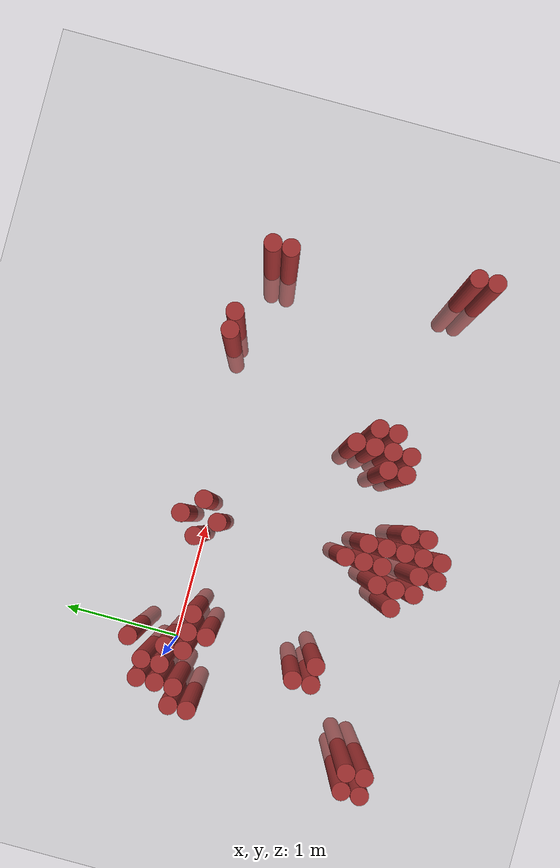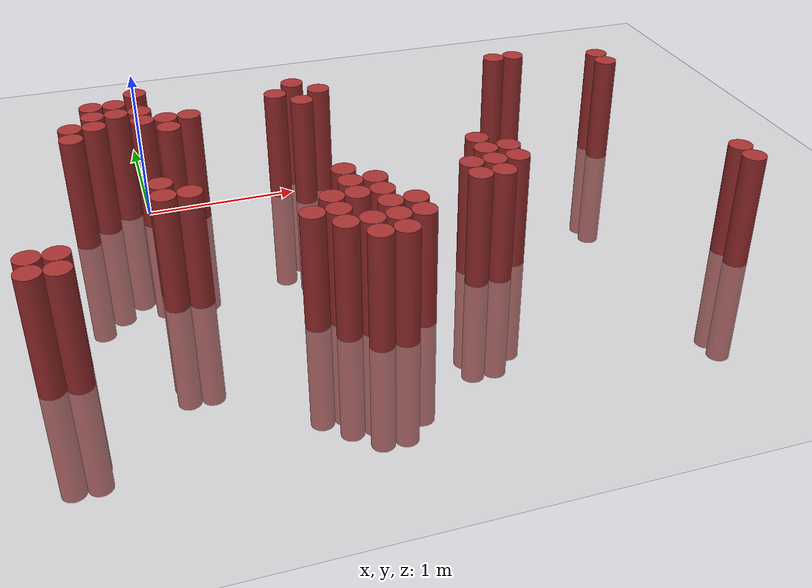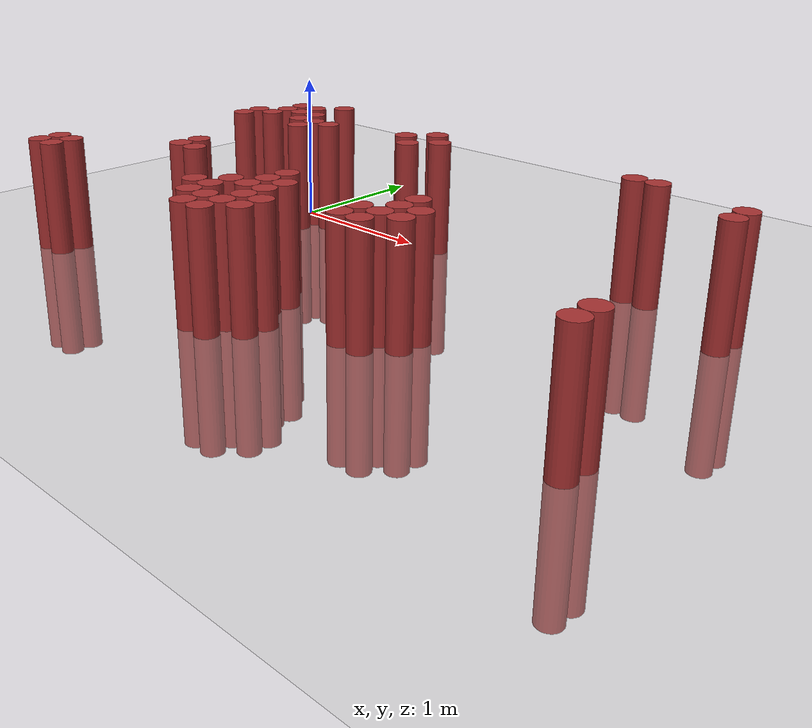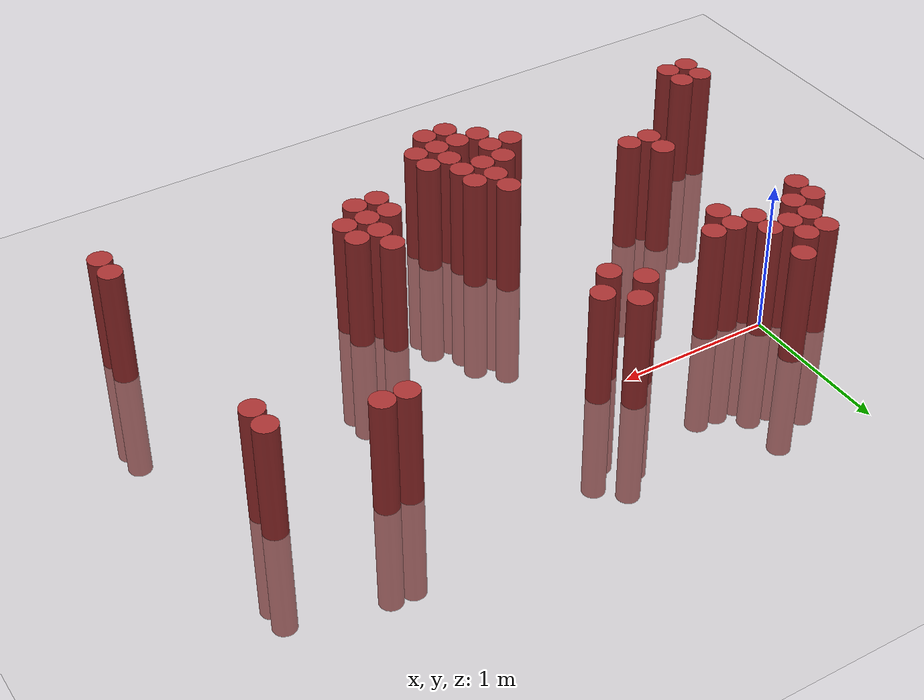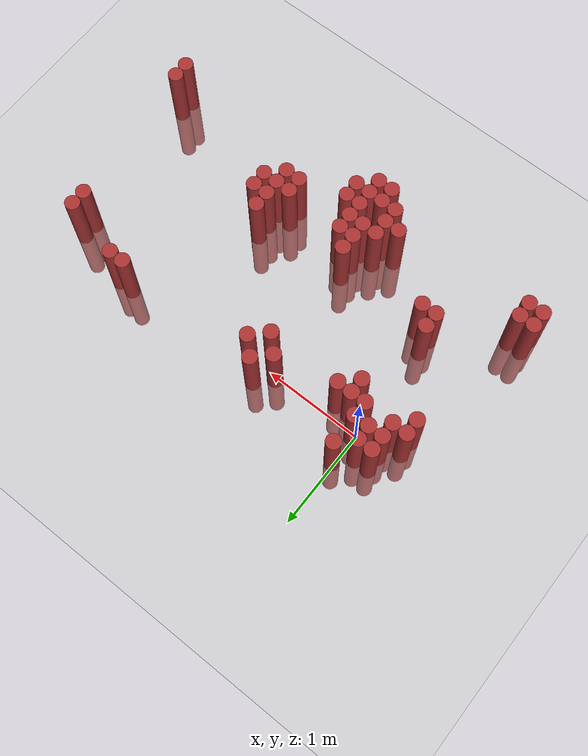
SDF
<sdf version="1.6">
 <world name="default">
  <model name="ground_plane">
   <static>1</static>
   <link name="link">
    <collision name="collision">
     <geometry><plane><normal>0 0 1</normal><size>100 100</size></plane></geometry>
     <surface><friction><ode><mu>100</mu><mu2>50</mu2></ode></friction></surface>
    </collision>
    <visual name="visual">
     <cast_shadows>0</cast_shadows>
     <geometry><plane><normal>0 0 1</normal><size>100 100</size></plane></geometry>
     <material>
      <script><uri>file://media/materials/scripts/gazebo.material</uri><name>Gazebo/Grey</name></script>
     </material>
    </visual>
   </link>
  </model>
  <model name="unit_cylinder_357">
   <static>1</static>
   <pose>-0.725000 -1.775000 0.000000 0.000000 0.000000 0.000000</pose>
   <link name="link">
    <inertial>
     <mass>1</mass>
     <inertia><ixx>0.145833</ixx><ixy>0</ixy><ixz>0</ixz><iyy>0.145833</iyy><iyz>0</iyz><izz>0.125</izz></inertia>
    </inertial>
    <collision name="collision">
     <geometry><cylinder><radius>0.075000</radius><length>1.5</length></cylinder></geometry>
    </collision>
    <visual name="visual">
     <geometry><cylinder><radius>0.075000</radius><length>1.5</length></cylinder></geometry>
     <material>
      <ambient>0.648000 0.192000 0.192000 1</ambient>
      <diffuse>0.648000 0.192000 0.192000 1</diffuse>
     </material>
     <material>
      <script><name>Gazebo/Grey</name><uri>file://media/materials/scripts/gazebo.material</uri></script>
     </material>
    </visual>
   </link>
  </model>
  <model name="unit_cylinder_358">
   <static>1</static>
   <pose>-0.725000 -1.625000 0.000000 0.000000 0.000000 0.000000</pose>
   <link name="link">
    <inertial>
     <mass>1</mass>
     <inertia><ixx>0.145833</ixx><ixy>0</ixy><ixz>0</ixz><iyy>0.145833</iyy><iyz>0</iyz><izz>0.125</izz></inertia>
    </inertial>
    <collision name="collision">
     <geometry><cylinder><radius>0.075000</radius><length>1.5</length></cylinder></geometry>
    </collision>
    <visual name="visual">
     <geometry><cylinder><radius>0.075000</radius><length>1.5</length></cylinder></geometry>
     <material>
      <ambient>0.648000 0.192000 0.192000 1</ambient>
      <diffuse>0.648000 0.192000 0.192000 1</diffuse>
     </material>
     <material>
      <script><name>Gazebo/Grey</name><uri>file://media/materials/scripts/gazebo.material</uri></script>
     </material>
    </visual>
   </link>
  </model>
  <model name="unit_cylinder_365">
   <static>1</static>
   <pose>-0.575000 -1.775000 0.000000 0.000000 0.000000 0.000000</pose>
   <link name="link">
    <inertial>
     <mass>1</mass>
     <inertia><ixx>0.145833</ixx><ixy>0</ixy><ixz>0</ixz><iyy>0.145833</iyy><iyz>0</iyz><izz>0.125</izz></inertia>
    </inertial>
    <collision name="collision">
     <geometry><cylinder><radius>0.075000</radius><length>1.5</length></cylinder></geometry>
    </collision>
    <visual name="visual">
     <geometry><cylinder><radius>0.075000</radius><length>1.5</length></cylinder></geometry>
     <material>
      <ambient>0.648000 0.192000 0.192000 1</ambient>
      <diffuse>0.648000 0.192000 0.192000 1</diffuse>
     </material>
     <material>
      <script><name>Gazebo/Grey</name><uri>file://media/materials/scripts/gazebo.material</uri></script>
     </material>
    </visual>
   </link>
  </model>
  <model name="unit_cylinder_366">
   <static>1</static>
   <pose>-0.575000 -1.625000 0.000000 0.000000 0.000000 0.000000</pose>
   <link name="link">
    <inertial>
     <mass>1</mass>
     <inertia><ixx>0.145833</ixx><ixy>0</ixy><ixz>0</ixz><iyy>0.145833</iyy><iyz>0</iyz><izz>0.125</izz></inertia>
    </inertial>
    <collision name="collision">
     <geometry><cylinder><radius>0.075000</radius><length>1.5</length></cylinder></geometry>
    </collision>
    <visual name="visual">
     <geometry><cylinder><radius>0.075000</radius><length>1.5</length></cylinder></geometry>
     <material>
      <ambient>0.648000 0.192000 0.192000 1</ambient>
      <diffuse>0.648000 0.192000 0.192000 1</diffuse>
     </material>
     <material>
      <script><name>Gazebo/Grey</name><uri>file://media/materials/scripts/gazebo.material</uri></script>
     </material>
    </visual>
   </link>
  </model>
  <model name="unit_cylinder_371">
   <static>1</static>
   <pose>-0.425000 -0.275000 0.000000 0.000000 0.000000 0.000000</pose>
   <link name="link">
    <inertial>
     <mass>1</mass>
     <inertia><ixx>0.145833</ixx><ixy>0</ixy><ixz>0</ixz><iyy>0.145833</iyy><iyz>0</iyz><izz>0.125</izz></inertia>
    </inertial>
    <collision name="collision">
     <geometry><cylinder><radius>0.075000</radius><length>1.5</length></cylinder></geometry>
    </collision>
    <visual name="visual">
     <geometry><cylinder><radius>0.075000</radius><length>1.5</length></cylinder></geometry>
     <material>
      <ambient>0.648000 0.192000 0.192000 1</ambient>
      <diffuse>0.648000 0.192000 0.192000 1</diffuse>
     </material>
     <material>
      <script><name>Gazebo/Grey</name><uri>file://media/materials/scripts/gazebo.material</uri></script>
     </material>
    </visual>
   </link>
  </model>
  <model name="unit_cylinder_372">
   <static>1</static>
   <pose>-0.425000 -0.125000 0.000000 0.000000 0.000000 0.000000</pose>
   <link name="link">
    <inertial>
     <mass>1</mass>
     <inertia><ixx>0.145833</ixx><ixy>0</ixy><ixz>0</ixz><iyy>0.145833</iyy><iyz>0</iyz><izz>0.125</izz></inertia>
    </inertial>
    <collision name="collision">
     <geometry><cylinder><radius>0.075000</radius><length>1.5</length></cylinder></geometry>
    </collision>
    <visual name="visual">
     <geometry><cylinder><radius>0.075000</radius><length>1.5</length></cylinder></geometry>
     <material>
      <ambient>0.648000 0.192000 0.192000 1</ambient>
      <diffuse>0.648000 0.192000 0.192000 1</diffuse>
     </material>
     <material>
      <script><name>Gazebo/Grey</name><uri>file://media/materials/scripts/gazebo.material</uri></script>
     </material>
    </visual>
   </link>
  </model>
  <model name="unit_cylinder_374">
   <static>1</static>
   <pose>-0.275000 -0.125000 0.000000 0.000000 0.000000 0.000000</pose>
   <link name="link">
    <inertial>
     <mass>1</mass>
     <inertia><ixx>0.145833</ixx><ixy>0</ixy><ixz>0</ixz><iyy>0.145833</iyy><iyz>0</iyz><izz>0.125</izz></inertia>
    </inertial>
    <collision name="collision">
     <geometry><cylinder><radius>0.075000</radius><length>1.5</length></cylinder></geometry>
    </collision>
    <visual name="visual">
     <geometry><cylinder><radius>0.075000</radius><length>1.5</length></cylinder></geometry>
     <material>
      <ambient>0.648000 0.192000 0.192000 1</ambient>
      <diffuse>0.648000 0.192000 0.192000 1</diffuse>
     </material>
     <material>
      <script><name>Gazebo/Grey</name><uri>file://media/materials/scripts/gazebo.material</uri></script>
     </material>
    </visual>
   </link>
  </model>
  <model name="unit_cylinder_375">
   <static>1</static>
   <pose>-0.275000 0.025000 0.000000 0.000000 0.000000 0.000000</pose>
   <link name="link">
    <inertial>
     <mass>1</mass>
     <inertia><ixx>0.145833</ixx><ixy>0</ixy><ixz>0</ixz><iyy>0.145833</iyy><iyz>0</iyz><izz>0.125</izz></inertia>
    </inertial>
    <collision name="collision">
     <geometry><cylinder><radius>0.075000</radius><length>1.5</length></cylinder></geometry>
    </collision>
    <visual name="visual">
     <geometry><cylinder><radius>0.075000</radius><length>1.5</length></cylinder></geometry>
     <material>
      <ambient>0.648000 0.192000 0.192000 1</ambient>
      <diffuse>0.648000 0.192000 0.192000 1</diffuse>
     </material>
     <material>
      <script><name>Gazebo/Grey</name><uri>file://media/materials/scripts/gazebo.material</uri></script>
     </material>
    </visual>
   </link>
  </model>
  <model name="unit_cylinder_376">
   <static>1</static>
   <pose>-0.275000 0.175000 0.000000 0.000000 0.000000 0.000000</pose>
   <link name="link">
    <inertial>
     <mass>1</mass>
     <inertia><ixx>0.145833</ixx><ixy>0</ixy><ixz>0</ixz><iyy>0.145833</iyy><iyz>0</iyz><izz>0.125</izz></inertia>
    </inertial>
    <collision name="collision">
     <geometry><cylinder><radius>0.075000</radius><length>1.5</length></cylinder></geometry>
    </collision>
    <visual name="visual">
     <geometry><cylinder><radius>0.075000</radius><length>1.5</length></cylinder></geometry>
     <material>
      <ambient>0.648000 0.192000 0.192000 1</ambient>
      <diffuse>0.648000 0.192000 0.192000 1</diffuse>
     </material>
     <material>
      <script><name>Gazebo/Grey</name><uri>file://media/materials/scripts/gazebo.material</uri></script>
     </material>
    </visual>
   </link>
  </model>
  <model name="unit_cylinder_379">
   <static>1</static>
   <pose>-0.125000 0.025000 0.000000 0.000000 0.000000 0.000000</pose>
   <link name="link">
    <inertial>
     <mass>1</mass>
     <inertia><ixx>0.145833</ixx><ixy>0</ixy><ixz>0</ixz><iyy>0.145833</iyy><iyz>0</iyz><izz>0.125</izz></inertia>
    </inertial>
    <collision name="collision">
     <geometry><cylinder><radius>0.075000</radius><length>1.5</length></cylinder></geometry>
    </collision>
    <visual name="visual">
     <geometry><cylinder><radius>0.075000</radius><length>1.5</length></cylinder></geometry>
     <material>
      <ambient>0.648000 0.192000 0.192000 1</ambient>
      <diffuse>0.648000 0.192000 0.192000 1</diffuse>
     </material>
     <material>
      <script><name>Gazebo/Grey</name><uri>file://media/materials/scripts/gazebo.material</uri></script>
     </material>
    </visual>
   </link>
  </model>
  <model name="unit_cylinder_380">
   <static>1</static>
   <pose>-0.125000 0.175000 0.000000 0.000000 0.000000 0.000000</pose>
   <link name="link">
    <inertial>
     <mass>1</mass>
     <inertia><ixx>0.145833</ixx><ixy>0</ixy><ixz>0</ixz><iyy>0.145833</iyy><iyz>0</iyz><izz>0.125</izz></inertia>
    </inertial>
    <collision name="collision">
     <geometry><cylinder><radius>0.075000</radius><length>1.5</length></cylinder></geometry>
    </collision>
    <visual name="visual">
     <geometry><cylinder><radius>0.075000</radius><length>1.5</length></cylinder></geometry>
     <material>
      <ambient>0.648000 0.192000 0.192000 1</ambient>
      <diffuse>0.648000 0.192000 0.192000 1</diffuse>
     </material>
     <material>
      <script><name>Gazebo/Grey</name><uri>file://media/materials/scripts/gazebo.material</uri></script>
     </material>
    </visual>
   </link>
  </model>
  <model name="unit_cylinder_382">
   <static>1</static>
   <pose>0.025000 -1.175000 0.000000 0.000000 0.000000 0.000000</pose>
   <link name="link">
    <inertial>
     <mass>1</mass>
     <inertia><ixx>0.145833</ixx><ixy>0</ixy><ixz>0</ixz><iyy>0.145833</iyy><iyz>0</iyz><izz>0.125</izz></inertia>
    </inertial>
    <collision name="collision">
     <geometry><cylinder><radius>0.075000</radius><length>1.5</length></cylinder></geometry>
    </collision>
    <visual name="visual">
     <geometry><cylinder><radius>0.075000</radius><length>1.5</length></cylinder></geometry>
     <material>
      <ambient>0.648000 0.192000 0.192000 1</ambient>
      <diffuse>0.648000 0.192000 0.192000 1</diffuse>
     </material>
     <material>
      <script><name>Gazebo/Grey</name><uri>file://media/materials/scripts/gazebo.material</uri></script>
     </material>
    </visual>
   </link>
  </model>
  <model name="unit_cylinder_383">
   <static>1</static>
   <pose>0.025000 -1.025000 0.000000 0.000000 0.000000 0.000000</pose>
   <link name="link">
    <inertial>
     <mass>1</mass>
     <inertia><ixx>0.145833</ixx><ixy>0</ixy><ixz>0</ixz><iyy>0.145833</iyy><iyz>0</iyz><izz>0.125</izz></inertia>
    </inertial>
    <collision name="collision">
     <geometry><cylinder><radius>0.075000</radius><length>1.5</length></cylinder></geometry>
    </collision>
    <visual name="visual">
     <geometry><cylinder><radius>0.075000</radius><length>1.5</length></cylinder></geometry>
     <material>
      <ambient>0.648000 0.192000 0.192000 1</ambient>
      <diffuse>0.648000 0.192000 0.192000 1</diffuse>
     </material>
     <material>
      <script><name>Gazebo/Grey</name><uri>file://media/materials/scripts/gazebo.material</uri></script>
     </material>
    </visual>
   </link>
  </model>
  <model name="unit_cylinder_384">
   <static>1</static>
   <pose>0.025000 -0.125000 0.000000 0.000000 0.000000 0.000000</pose>
   <link name="link">
    <inertial>
     <mass>1</mass>
     <inertia><ixx>0.145833</ixx><ixy>0</ixy><ixz>0</ixz><iyy>0.145833</iyy><iyz>0</iyz><izz>0.125</izz></inertia>
    </inertial>
    <collision name="collision">
     <geometry><cylinder><radius>0.075000</radius><length>1.5</length></cylinder></geometry>
    </collision>
    <visual name="visual">
     <geometry><cylinder><radius>0.075000</radius><length>1.5</length></cylinder></geometry>
     <material>
      <ambient>0.648000 0.192000 0.192000 1</ambient>
      <diffuse>0.648000 0.192000 0.192000 1</diffuse>
     </material>
     <material>
      <script><name>Gazebo/Grey</name><uri>file://media/materials/scripts/gazebo.material</uri></script>
     </material>
    </visual>
   </link>
  </model>
  <model name="unit_cylinder_385">
   <static>1</static>
   <pose>0.025000 0.025000 0.000000 0.000000 0.000000 0.000000</pose>
   <link name="link">
    <inertial>
     <mass>1</mass>
     <inertia><ixx>0.145833</ixx><ixy>0</ixy><ixz>0</ixz><iyy>0.145833</iyy><iyz>0</iyz><izz>0.125</izz></inertia>
    </inertial>
    <collision name="collision">
     <geometry><cylinder><radius>0.075000</radius><length>1.5</length></cylinder></geometry>
    </collision>
    <visual name="visual">
     <geometry><cylinder><radius>0.075000</radius><length>1.5</length></cylinder></geometry>
     <material>
      <ambient>0.648000 0.192000 0.192000 1</ambient>
      <diffuse>0.648000 0.192000 0.192000 1</diffuse>
     </material>
     <material>
      <script><name>Gazebo/Grey</name><uri>file://media/materials/scripts/gazebo.material</uri></script>
     </material>
    </visual>
   </link>
  </model>
  <model name="unit_cylinder_386">
   <static>1</static>
   <pose>0.025000 0.325000 0.000000 0.000000 0.000000 0.000000</pose>
   <link name="link">
    <inertial>
     <mass>1</mass>
     <inertia><ixx>0.145833</ixx><ixy>0</ixy><ixz>0</ixz><iyy>0.145833</iyy><iyz>0</iyz><izz>0.125</izz></inertia>
    </inertial>
    <collision name="collision">
     <geometry><cylinder><radius>0.075000</radius><length>1.5</length></cylinder></geometry>
    </collision>
    <visual name="visual">
     <geometry><cylinder><radius>0.075000</radius><length>1.5</length></cylinder></geometry>
     <material>
      <ambient>0.648000 0.192000 0.192000 1</ambient>
      <diffuse>0.648000 0.192000 0.192000 1</diffuse>
     </material>
     <material>
      <script><name>Gazebo/Grey</name><uri>file://media/materials/scripts/gazebo.material</uri></script>
     </material>
    </visual>
   </link>
  </model>
  <model name="unit_cylinder_387">
   <static>1</static>
   <pose>0.175000 -1.175000 0.000000 0.000000 0.000000 0.000000</pose>
   <link name="link">
    <inertial>
     <mass>1</mass>
     <inertia><ixx>0.145833</ixx><ixy>0</ixy><ixz>0</ixz><iyy>0.145833</iyy><iyz>0</iyz><izz>0.125</izz></inertia>
    </inertial>
    <collision name="collision">
     <geometry><cylinder><radius>0.075000</radius><length>1.5</length></cylinder></geometry>
    </collision>
    <visual name="visual">
     <geometry><cylinder><radius>0.075000</radius><length>1.5</length></cylinder></geometry>
     <material>
      <ambient>0.648000 0.192000 0.192000 1</ambient>
      <diffuse>0.648000 0.192000 0.192000 1</diffuse>
     </material>
     <material>
      <script><name>Gazebo/Grey</name><uri>file://media/materials/scripts/gazebo.material</uri></script>
     </material>
    </visual>
   </link>
  </model>
  <model name="unit_cylinder_388">
   <static>1</static>
   <pose>0.175000 -0.275000 0.000000 0.000000 0.000000 0.000000</pose>
   <link name="link">
    <inertial>
     <mass>1</mass>
     <inertia><ixx>0.145833</ixx><ixy>0</ixy><ixz>0</ixz><iyy>0.145833</iyy><iyz>0</iyz><izz>0.125</izz></inertia>
    </inertial>
    <collision name="collision">
     <geometry><cylinder><radius>0.075000</radius><length>1.5</length></cylinder></geometry>
    </collision>
    <visual name="visual">
     <geometry><cylinder><radius>0.075000</radius><length>1.5</length></cylinder></geometry>
     <material>
      <ambient>0.648000 0.192000 0.192000 1</ambient>
      <diffuse>0.648000 0.192000 0.192000 1</diffuse>
     </material>
     <material>
      <script><name>Gazebo/Grey</name><uri>file://media/materials/scripts/gazebo.material</uri></script>
     </material>
    </visual>
   </link>
  </model>
  <model name="unit_cylinder_389">
   <static>1</static>
   <pose>0.175000 -0.125000 0.000000 0.000000 0.000000 0.000000</pose>
   <link name="link">
    <inertial>
     <mass>1</mass>
     <inertia><ixx>0.145833</ixx><ixy>0</ixy><ixz>0</ixz><iyy>0.145833</iyy><iyz>0</iyz><izz>0.125</izz></inertia>
    </inertial>
    <collision name="collision">
     <geometry><cylinder><radius>0.075000</radius><length>1.5</length></cylinder></geometry>
    </collision>
    <visual name="visual">
     <geometry><cylinder><radius>0.075000</radius><length>1.5</length></cylinder></geometry>
     <material>
      <ambient>0.648000 0.192000 0.192000 1</ambient>
      <diffuse>0.648000 0.192000 0.192000 1</diffuse>
     </material>
     <material>
      <script><name>Gazebo/Grey</name><uri>file://media/materials/scripts/gazebo.material</uri></script>
     </material>
    </visual>
   </link>
  </model>
  <model name="unit_cylinder_390">
   <static>1</static>
   <pose>0.325000 -0.125000 0.000000 0.000000 0.000000 0.000000</pose>
   <link name="link">
    <inertial>
     <mass>1</mass>
     <inertia><ixx>0.145833</ixx><ixy>0</ixy><ixz>0</ixz><iyy>0.145833</iyy><iyz>0</iyz><izz>0.125</izz></inertia>
    </inertial>
    <collision name="collision">
     <geometry><cylinder><radius>0.075000</radius><length>1.5</length></cylinder></geometry>
    </collision>
    <visual name="visual">
     <geometry><cylinder><radius>0.075000</radius><length>1.5</length></cylinder></geometry>
     <material>
      <ambient>0.648000 0.192000 0.192000 1</ambient>
      <diffuse>0.648000 0.192000 0.192000 1</diffuse>
     </material>
     <material>
      <script><name>Gazebo/Grey</name><uri>file://media/materials/scripts/gazebo.material</uri></script>
     </material>
    </visual>
   </link>
  </model>
  <model name="unit_cylinder_391">
   <static>1</static>
   <pose>0.775000 -1.625000 0.000000 0.000000 0.000000 0.000000</pose>
   <link name="link">
    <inertial>
     <mass>1</mass>
     <inertia><ixx>0.145833</ixx><ixy>0</ixy><ixz>0</ixz><iyy>0.145833</iyy><iyz>0</iyz><izz>0.125</izz></inertia>
    </inertial>
    <collision name="collision">
     <geometry><cylinder><radius>0.075000</radius><length>1.5</length></cylinder></geometry>
    </collision>
    <visual name="visual">
     <geometry><cylinder><radius>0.075000</radius><length>1.5</length></cylinder></geometry>
     <material>
      <ambient>0.648000 0.192000 0.192000 1</ambient>
      <diffuse>0.648000 0.192000 0.192000 1</diffuse>
     </material>
     <material>
      <script><name>Gazebo/Grey</name><uri>file://media/materials/scripts/gazebo.material</uri></script>
     </material>
    </visual>
   </link>
  </model>
  <model name="unit_cylinder_392">
   <static>1</static>
   <pose>0.925000 -1.775000 0.000000 0.000000 0.000000 0.000000</pose>
   <link name="link">
    <inertial>
     <mass>1</mass>
     <inertia><ixx>0.145833</ixx><ixy>0</ixy><ixz>0</ixz><iyy>0.145833</iyy><iyz>0</iyz><izz>0.125</izz></inertia>
    </inertial>
    <collision name="collision">
     <geometry><cylinder><radius>0.075000</radius><length>1.5</length></cylinder></geometry>
    </collision>
    <visual name="visual">
     <geometry><cylinder><radius>0.075000</radius><length>1.5</length></cylinder></geometry>
     <material>
      <ambient>0.648000 0.192000 0.192000 1</ambient>
      <diffuse>0.648000 0.192000 0.192000 1</diffuse>
     </material>
     <material>
      <script><name>Gazebo/Grey</name><uri>file://media/materials/scripts/gazebo.material</uri></script>
     </material>
    </visual>
   </link>
  </model>
  <model name="unit_cylinder_393">
   <static>1</static>
   <pose>0.925000 -1.625000 0.000000 0.000000 0.000000 0.000000</pose>
   <link name="link">
    <inertial>
     <mass>1</mass>
     <inertia><ixx>0.145833</ixx><ixy>0</ixy><ixz>0</ixz><iyy>0.145833</iyy><iyz>0</iyz><izz>0.125</izz></inertia>
    </inertial>
    <collision name="collision">
     <geometry><cylinder><radius>0.075000</radius><length>1.5</length></cylinder></geometry>
    </collision>
    <visual name="visual">
     <geometry><cylinder><radius>0.075000</radius><length>1.5</length></cylinder></geometry>
     <material>
      <ambient>0.648000 0.192000 0.192000 1</ambient>
      <diffuse>0.648000 0.192000 0.192000 1</diffuse>
     </material>
     <material>
      <script><name>Gazebo/Grey</name><uri>file://media/materials/scripts/gazebo.material</uri></script>
     </material>
    </visual>
   </link>
  </model>
  <model name="unit_cylinder_394">
   <static>1</static>
   <pose>0.925000 -1.475000 0.000000 0.000000 0.000000 0.000000</pose>
   <link name="link">
    <inertial>
     <mass>1</mass>
     <inertia><ixx>0.145833</ixx><ixy>0</ixy><ixz>0</ixz><iyy>0.145833</iyy><iyz>0</iyz><izz>0.125</izz></inertia>
    </inertial>
    <collision name="collision">
     <geometry><cylinder><radius>0.075000</radius><length>1.5</length></cylinder></geometry>
    </collision>
    <visual name="visual">
     <geometry><cylinder><radius>0.075000</radius><length>1.5</length></cylinder></geometry>
     <material>
      <ambient>0.648000 0.192000 0.192000 1</ambient>
      <diffuse>0.648000 0.192000 0.192000 1</diffuse>
     </material>
     <material>
      <script><name>Gazebo/Grey</name><uri>file://media/materials/scripts/gazebo.material</uri></script>
     </material>
    </visual>
   </link>
  </model>
  <model name="unit_cylinder_395">
   <static>1</static>
   <pose>0.925000 0.025000 0.000000 0.000000 0.000000 0.000000</pose>
   <link name="link">
    <inertial>
     <mass>1</mass>
     <inertia><ixx>0.145833</ixx><ixy>0</ixy><ixz>0</ixz><iyy>0.145833</iyy><iyz>0</iyz><izz>0.125</izz></inertia>
    </inertial>
    <collision name="collision">
     <geometry><cylinder><radius>0.075000</radius><length>1.5</length></cylinder></geometry>
    </collision>
    <visual name="visual">
     <geometry><cylinder><radius>0.075000</radius><length>1.5</length></cylinder></geometry>
     <material>
      <ambient>0.648000 0.192000 0.192000 1</ambient>
      <diffuse>0.648000 0.192000 0.192000 1</diffuse>
     </material>
     <material>
      <script><name>Gazebo/Grey</name><uri>file://media/materials/scripts/gazebo.material</uri></script>
     </material>
    </visual>
   </link>
  </model>
  <model name="unit_cylinder_396">
   <static>1</static>
   <pose>1.075000 -1.925000 0.000000 0.000000 0.000000 0.000000</pose>
   <link name="link">
    <inertial>
     <mass>1</mass>
     <inertia><ixx>0.145833</ixx><ixy>0</ixy><ixz>0</ixz><iyy>0.145833</iyy><iyz>0</iyz><izz>0.125</izz></inertia>
    </inertial>
    <collision name="collision">
     <geometry><cylinder><radius>0.075000</radius><length>1.5</length></cylinder></geometry>
    </collision>
    <visual name="visual">
     <geometry><cylinder><radius>0.075000</radius><length>1.5</length></cylinder></geometry>
     <material>
      <ambient>0.648000 0.192000 0.192000 1</ambient>
      <diffuse>0.648000 0.192000 0.192000 1</diffuse>
     </material>
     <material>
      <script><name>Gazebo/Grey</name><uri>file://media/materials/scripts/gazebo.material</uri></script>
     </material>
    </visual>
   </link>
  </model>
  <model name="unit_cylinder_397">
   <static>1</static>
   <pose>1.075000 -1.775000 0.000000 0.000000 0.000000 0.000000</pose>
   <link name="link">
    <inertial>
     <mass>1</mass>
     <inertia><ixx>0.145833</ixx><ixy>0</ixy><ixz>0</ixz><iyy>0.145833</iyy><iyz>0</iyz><izz>0.125</izz></inertia>
    </inertial>
    <collision name="collision">
     <geometry><cylinder><radius>0.075000</radius><length>1.5</length></cylinder></geometry>
    </collision>
    <visual name="visual">
     <geometry><cylinder><radius>0.075000</radius><length>1.5</length></cylinder></geometry>
     <material>
      <ambient>0.648000 0.192000 0.192000 1</ambient>
      <diffuse>0.648000 0.192000 0.192000 1</diffuse>
     </material>
     <material>
      <script><name>Gazebo/Grey</name><uri>file://media/materials/scripts/gazebo.material</uri></script>
     </material>
    </visual>
   </link>
  </model>
  <model name="unit_cylinder_398">
   <static>1</static>
   <pose>1.075000 -1.475000 0.000000 0.000000 0.000000 0.000000</pose>
   <link name="link">
    <inertial>
     <mass>1</mass>
     <inertia><ixx>0.145833</ixx><ixy>0</ixy><ixz>0</ixz><iyy>0.145833</iyy><iyz>0</iyz><izz>0.125</izz></inertia>
    </inertial>
    <collision name="collision">
     <geometry><cylinder><radius>0.075000</radius><length>1.5</length></cylinder></geometry>
    </collision>
    <visual name="visual">
     <geometry><cylinder><radius>0.075000</radius><length>1.5</length></cylinder></geometry>
     <material>
      <ambient>0.648000 0.192000 0.192000 1</ambient>
      <diffuse>0.648000 0.192000 0.192000 1</diffuse>
     </material>
     <material>
      <script><name>Gazebo/Grey</name><uri>file://media/materials/scripts/gazebo.material</uri></script>
     </material>
    </visual>
   </link>
  </model>
  <model name="unit_cylinder_399">
   <static>1</static>
   <pose>1.075000 -1.325000 0.000000 0.000000 0.000000 0.000000</pose>
   <link name="link">
    <inertial>
     <mass>1</mass>
     <inertia><ixx>0.145833</ixx><ixy>0</ixy><ixz>0</ixz><iyy>0.145833</iyy><iyz>0</iyz><izz>0.125</izz></inertia>
    </inertial>
    <collision name="collision">
     <geometry><cylinder><radius>0.075000</radius><length>1.5</length></cylinder></geometry>
    </collision>
    <visual name="visual">
     <geometry><cylinder><radius>0.075000</radius><length>1.5</length></cylinder></geometry>
     <material>
      <ambient>0.648000 0.192000 0.192000 1</ambient>
      <diffuse>0.648000 0.192000 0.192000 1</diffuse>
     </material>
     <material>
      <script><name>Gazebo/Grey</name><uri>file://media/materials/scripts/gazebo.material</uri></script>
     </material>
    </visual>
   </link>
  </model>
  <model name="unit_cylinder_400">
   <static>1</static>
   <pose>1.075000 -1.175000 0.000000 0.000000 0.000000 0.000000</pose>
   <link name="link">
    <inertial>
     <mass>1</mass>
     <inertia><ixx>0.145833</ixx><ixy>0</ixy><ixz>0</ixz><iyy>0.145833</iyy><iyz>0</iyz><izz>0.125</izz></inertia>
    </inertial>
    <collision name="collision">
     <geometry><cylinder><radius>0.075000</radius><length>1.5</length></cylinder></geometry>
    </collision>
    <visual name="visual">
     <geometry><cylinder><radius>0.075000</radius><length>1.5</length></cylinder></geometry>
     <material>
      <ambient>0.648000 0.192000 0.192000 1</ambient>
      <diffuse>0.648000 0.192000 0.192000 1</diffuse>
     </material>
     <material>
      <script><name>Gazebo/Grey</name><uri>file://media/materials/scripts/gazebo.material</uri></script>
     </material>
    </visual>
   </link>
  </model>
  <model name="unit_cylinder_401">
   <static>1</static>
   <pose>1.075000 -0.125000 0.000000 0.000000 0.000000 0.000000</pose>
   <link name="link">
    <inertial>
     <mass>1</mass>
     <inertia><ixx>0.145833</ixx><ixy>0</ixy><ixz>0</ixz><iyy>0.145833</iyy><iyz>0</iyz><izz>0.125</izz></inertia>
    </inertial>
    <collision name="collision">
     <geometry><cylinder><radius>0.075000</radius><length>1.5</length></cylinder></geometry>
    </collision>
    <visual name="visual">
     <geometry><cylinder><radius>0.075000</radius><length>1.5</length></cylinder></geometry>
     <material>
      <ambient>0.648000 0.192000 0.192000 1</ambient>
      <diffuse>0.648000 0.192000 0.192000 1</diffuse>
     </material>
     <material>
      <script><name>Gazebo/Grey</name><uri>file://media/materials/scripts/gazebo.material</uri></script>
     </material>
    </visual>
   </link>
  </model>
  <model name="unit_cylinder_402">
   <static>1</static>
   <pose>1.075000 0.175000 0.000000 0.000000 0.000000 0.000000</pose>
   <link name="link">
    <inertial>
     <mass>1</mass>
     <inertia><ixx>0.145833</ixx><ixy>0</ixy><ixz>0</ixz><iyy>0.145833</iyy><iyz>0</iyz><izz>0.125</izz></inertia>
    </inertial>
    <collision name="collision">
     <geometry><cylinder><radius>0.075000</radius><length>1.5</length></cylinder></geometry>
    </collision>
    <visual name="visual">
     <geometry><cylinder><radius>0.075000</radius><length>1.5</length></cylinder></geometry>
     <material>
      <ambient>0.648000 0.192000 0.192000 1</ambient>
      <diffuse>0.648000 0.192000 0.192000 1</diffuse>
     </material>
     <material>
      <script><name>Gazebo/Grey</name><uri>file://media/materials/scripts/gazebo.material</uri></script>
     </material>
    </visual>
   </link>
  </model>
  <model name="unit_cylinder_406">
   <static>1</static>
   <pose>1.225000 -1.925000 0.000000 0.000000 0.000000 0.000000</pose>
   <link name="link">
    <inertial>
     <mass>1</mass>
     <inertia><ixx>0.145833</ixx><ixy>0</ixy><ixz>0</ixz><iyy>0.145833</iyy><iyz>0</iyz><izz>0.125</izz></inertia>
    </inertial>
    <collision name="collision">
     <geometry><cylinder><radius>0.075000</radius><length>1.5</length></cylinder></geometry>
    </collision>
    <visual name="visual">
     <geometry><cylinder><radius>0.075000</radius><length>1.5</length></cylinder></geometry>
     <material>
      <ambient>0.648000 0.192000 0.192000 1</ambient>
      <diffuse>0.648000 0.192000 0.192000 1</diffuse>
     </material>
     <material>
      <script><name>Gazebo/Grey</name><uri>file://media/materials/scripts/gazebo.material</uri></script>
     </material>
    </visual>
   </link>
  </model>
  <model name="unit_cylinder_407">
   <static>1</static>
   <pose>1.225000 -1.775000 0.000000 0.000000 0.000000 0.000000</pose>
   <link name="link">
    <inertial>
     <mass>1</mass>
     <inertia><ixx>0.145833</ixx><ixy>0</ixy><ixz>0</ixz><iyy>0.145833</iyy><iyz>0</iyz><izz>0.125</izz></inertia>
    </inertial>
    <collision name="collision">
     <geometry><cylinder><radius>0.075000</radius><length>1.5</length></cylinder></geometry>
    </collision>
    <visual name="visual">
     <geometry><cylinder><radius>0.075000</radius><length>1.5</length></cylinder></geometry>
     <material>
      <ambient>0.648000 0.192000 0.192000 1</ambient>
      <diffuse>0.648000 0.192000 0.192000 1</diffuse>
     </material>
     <material>
      <script><name>Gazebo/Grey</name><uri>file://media/materials/scripts/gazebo.material</uri></script>
     </material>
    </visual>
   </link>
  </model>
  <model name="unit_cylinder_408">
   <static>1</static>
   <pose>1.225000 -1.625000 0.000000 0.000000 0.000000 0.000000</pose>
   <link name="link">
    <inertial>
     <mass>1</mass>
     <inertia><ixx>0.145833</ixx><ixy>0</ixy><ixz>0</ixz><iyy>0.145833</iyy><iyz>0</iyz><izz>0.125</izz></inertia>
    </inertial>
    <collision name="collision">
     <geometry><cylinder><radius>0.075000</radius><length>1.5</length></cylinder></geometry>
    </collision>
    <visual name="visual">
     <geometry><cylinder><radius>0.075000</radius><length>1.5</length></cylinder></geometry>
     <material>
      <ambient>0.648000 0.192000 0.192000 1</ambient>
      <diffuse>0.648000 0.192000 0.192000 1</diffuse>
     </material>
     <material>
      <script><name>Gazebo/Grey</name><uri>file://media/materials/scripts/gazebo.material</uri></script>
     </material>
    </visual>
   </link>
  </model>
  <model name="unit_cylinder_409">
   <static>1</static>
   <pose>1.225000 -1.475000 0.000000 0.000000 0.000000 0.000000</pose>
   <link name="link">
    <inertial>
     <mass>1</mass>
     <inertia><ixx>0.145833</ixx><ixy>0</ixy><ixz>0</ixz><iyy>0.145833</iyy><iyz>0</iyz><izz>0.125</izz></inertia>
    </inertial>
    <collision name="collision">
     <geometry><cylinder><radius>0.075000</radius><length>1.5</length></cylinder></geometry>
    </collision>
    <visual name="visual">
     <geometry><cylinder><radius>0.075000</radius><length>1.5</length></cylinder></geometry>
     <material>
      <ambient>0.648000 0.192000 0.192000 1</ambient>
      <diffuse>0.648000 0.192000 0.192000 1</diffuse>
     </material>
     <material>
      <script><name>Gazebo/Grey</name><uri>file://media/materials/scripts/gazebo.material</uri></script>
     </material>
    </visual>
   </link>
  </model>
  <model name="unit_cylinder_410">
   <static>1</static>
   <pose>1.225000 -1.325000 0.000000 0.000000 0.000000 0.000000</pose>
   <link name="link">
    <inertial>
     <mass>1</mass>
     <inertia><ixx>0.145833</ixx><ixy>0</ixy><ixz>0</ixz><iyy>0.145833</iyy><iyz>0</iyz><izz>0.125</izz></inertia>
    </inertial>
    <collision name="collision">
     <geometry><cylinder><radius>0.075000</radius><length>1.5</length></cylinder></geometry>
    </collision>
    <visual name="visual">
     <geometry><cylinder><radius>0.075000</radius><length>1.5</length></cylinder></geometry>
     <material>
      <ambient>0.648000 0.192000 0.192000 1</ambient>
      <diffuse>0.648000 0.192000 0.192000 1</diffuse>
     </material>
     <material>
      <script><name>Gazebo/Grey</name><uri>file://media/materials/scripts/gazebo.material</uri></script>
     </material>
    </visual>
   </link>
  </model>
  <model name="unit_cylinder_411">
   <static>1</static>
   <pose>1.225000 0.025000 0.000000 0.000000 0.000000 0.000000</pose>
   <link name="link">
    <inertial>
     <mass>1</mass>
     <inertia><ixx>0.145833</ixx><ixy>0</ixy><ixz>0</ixz><iyy>0.145833</iyy><iyz>0</iyz><izz>0.125</izz></inertia>
    </inertial>
    <collision name="collision">
     <geometry><cylinder><radius>0.075000</radius><length>1.5</length></cylinder></geometry>
    </collision>
    <visual name="visual">
     <geometry><cylinder><radius>0.075000</radius><length>1.5</length></cylinder></geometry>
     <material>
      <ambient>0.648000 0.192000 0.192000 1</ambient>
      <diffuse>0.648000 0.192000 0.192000 1</diffuse>
     </material>
     <material>
      <script><name>Gazebo/Grey</name><uri>file://media/materials/scripts/gazebo.material</uri></script>
     </material>
    </visual>
   </link>
  </model>
  <model name="unit_cylinder_416">
   <static>1</static>
   <pose>1.375000 -1.775000 0.000000 0.000000 0.000000 0.000000</pose>
   <link name="link">
    <inertial>
     <mass>1</mass>
     <inertia><ixx>0.145833</ixx><ixy>0</ixy><ixz>0</ixz><iyy>0.145833</iyy><iyz>0</iyz><izz>0.125</izz></inertia>
    </inertial>
    <collision name="collision">
     <geometry><cylinder><radius>0.075000</radius><length>1.5</length></cylinder></geometry>
    </collision>
    <visual name="visual">
     <geometry><cylinder><radius>0.075000</radius><length>1.5</length></cylinder></geometry>
     <material>
      <ambient>0.648000 0.192000 0.192000 1</ambient>
      <diffuse>0.648000 0.192000 0.192000 1</diffuse>
     </material>
     <material>
      <script><name>Gazebo/Grey</name><uri>file://media/materials/scripts/gazebo.material</uri></script>
     </material>
    </visual>
   </link>
  </model>
  <model name="unit_cylinder_417">
   <static>1</static>
   <pose>1.375000 -1.625000 0.000000 0.000000 0.000000 0.000000</pose>
   <link name="link">
    <inertial>
     <mass>1</mass>
     <inertia><ixx>0.145833</ixx><ixy>0</ixy><ixz>0</ixz><iyy>0.145833</iyy><iyz>0</iyz><izz>0.125</izz></inertia>
    </inertial>
    <collision name="collision">
     <geometry><cylinder><radius>0.075000</radius><length>1.5</length></cylinder></geometry>
    </collision>
    <visual name="visual">
     <geometry><cylinder><radius>0.075000</radius><length>1.5</length></cylinder></geometry>
     <material>
      <ambient>0.648000 0.192000 0.192000 1</ambient>
      <diffuse>0.648000 0.192000 0.192000 1</diffuse>
     </material>
     <material>
      <script><name>Gazebo/Grey</name><uri>file://media/materials/scripts/gazebo.material</uri></script>
     </material>
    </visual>
   </link>
  </model>
  <model name="unit_cylinder_426">
   <static>1</static>
   <pose>1.825000 -1.475000 0.000000 0.000000 0.000000 0.000000</pose>
   <link name="link">
    <inertial>
     <mass>1</mass>
     <inertia><ixx>0.145833</ixx><ixy>0</ixy><ixz>0</ixz><iyy>0.145833</iyy><iyz>0</iyz><izz>0.125</izz></inertia>
    </inertial>
    <collision name="collision">
     <geometry><cylinder><radius>0.075000</radius><length>1.5</length></cylinder></geometry>
    </collision>
    <visual name="visual">
     <geometry><cylinder><radius>0.075000</radius><length>1.5</length></cylinder></geometry>
     <material>
      <ambient>0.648000 0.192000 0.192000 1</ambient>
      <diffuse>0.648000 0.192000 0.192000 1</diffuse>
     </material>
     <material>
      <script><name>Gazebo/Grey</name><uri>file://media/materials/scripts/gazebo.material</uri></script>
     </material>
    </visual>
   </link>
  </model>
  <model name="unit_cylinder_427">
   <static>1</static>
   <pose>1.825000 -1.325000 0.000000 0.000000 0.000000 0.000000</pose>
   <link name="link">
    <inertial>
     <mass>1</mass>
     <inertia><ixx>0.145833</ixx><ixy>0</ixy><ixz>0</ixz><iyy>0.145833</iyy><iyz>0</iyz><izz>0.125</izz></inertia>
    </inertial>
    <collision name="collision">
     <geometry><cylinder><radius>0.075000</radius><length>1.5</length></cylinder></geometry>
    </collision>
    <visual name="visual">
     <geometry><cylinder><radius>0.075000</radius><length>1.5</length></cylinder></geometry>
     <material>
      <ambient>0.648000 0.192000 0.192000 1</ambient>
      <diffuse>0.648000 0.192000 0.192000 1</diffuse>
     </material>
     <material>
      <script><name>Gazebo/Grey</name><uri>file://media/materials/scripts/gazebo.material</uri></script>
     </material>
    </visual>
   </link>
  </model>
  <model name="unit_cylinder_428">
   <static>1</static>
   <pose>1.975000 -1.475000 0.000000 0.000000 0.000000 0.000000</pose>
   <link name="link">
    <inertial>
     <mass>1</mass>
     <inertia><ixx>0.145833</ixx><ixy>0</ixy><ixz>0</ixz><iyy>0.145833</iyy><iyz>0</iyz><izz>0.125</izz></inertia>
    </inertial>
    <collision name="collision">
     <geometry><cylinder><radius>0.075000</radius><length>1.5</length></cylinder></geometry>
    </collision>
    <visual name="visual">
     <geometry><cylinder><radius>0.075000</radius><length>1.5</length></cylinder></geometry>
     <material>
      <ambient>0.648000 0.192000 0.192000 1</ambient>
      <diffuse>0.648000 0.192000 0.192000 1</diffuse>
     </material>
     <material>
      <script><name>Gazebo/Grey</name><uri>file://media/materials/scripts/gazebo.material</uri></script>
     </material>
    </visual>
   </link>
  </model>
  <model name="unit_cylinder_429">
   <static>1</static>
   <pose>1.975000 -1.325000 0.000000 0.000000 0.000000 0.000000</pose>
   <link name="link">
    <inertial>
     <mass>1</mass>
     <inertia><ixx>0.145833</ixx><ixy>0</ixy><ixz>0</ixz><iyy>0.145833</iyy><iyz>0</iyz><izz>0.125</izz></inertia>
    </inertial>
    <collision name="collision">
     <geometry><cylinder><radius>0.075000</radius><length>1.5</length></cylinder></geometry>
    </collision>
    <visual name="visual">
     <geometry><cylinder><radius>0.075000</radius><length>1.5</length></cylinder></geometry>
     <material>
      <ambient>0.648000 0.192000 0.192000 1</ambient>
      <diffuse>0.648000 0.192000 0.192000 1</diffuse>
     </material>
     <material>
      <script><name>Gazebo/Grey</name><uri>file://media/materials/scripts/gazebo.material</uri></script>
     </material>
    </visual>
   </link>
  </model>
  <model name="unit_cylinder_430">
   <static>1</static>
   <pose>1.975000 -1.175000 0.000000 0.000000 0.000000 0.000000</pose>
   <link name="link">
    <inertial>
     <mass>1</mass>
     <inertia><ixx>0.145833</ixx><ixy>0</ixy><ixz>0</ixz><iyy>0.145833</iyy><iyz>0</iyz><izz>0.125</izz></inertia>
    </inertial>
    <collision name="collision">
     <geometry><cylinder><radius>0.075000</radius><length>1.5</length></cylinder></geometry>
    </collision>
    <visual name="visual">
     <geometry><cylinder><radius>0.075000</radius><length>1.5</length></cylinder></geometry>
     <material>
      <ambient>0.648000 0.192000 0.192000 1</ambient>
      <diffuse>0.648000 0.192000 0.192000 1</diffuse>
     </material>
     <material>
      <script><name>Gazebo/Grey</name><uri>file://media/materials/scripts/gazebo.material</uri></script>
     </material>
    </visual>
   </link>
  </model>
  <model name="unit_cylinder_431">
   <static>1</static>
   <pose>1.975000 -1.025000 0.000000 0.000000 0.000000 0.000000</pose>
   <link name="link">
    <inertial>
     <mass>1</mass>
     <inertia><ixx>0.145833</ixx><ixy>0</ixy><ixz>0</ixz><iyy>0.145833</iyy><iyz>0</iyz><izz>0.125</izz></inertia>
    </inertial>
    <collision name="collision">
     <geometry><cylinder><radius>0.075000</radius><length>1.5</length></cylinder></geometry>
    </collision>
    <visual name="visual">
     <geometry><cylinder><radius>0.075000</radius><length>1.5</length></cylinder></geometry>
     <material>
      <ambient>0.648000 0.192000 0.192000 1</ambient>
      <diffuse>0.648000 0.192000 0.192000 1</diffuse>
     </material>
     <material>
      <script><name>Gazebo/Grey</name><uri>file://media/materials/scripts/gazebo.material</uri></script>
     </material>
    </visual>
   </link>
  </model>
  <model name="unit_cylinder_434">
   <static>1</static>
   <pose>2.125000 -1.325000 0.000000 0.000000 0.000000 0.000000</pose>
   <link name="link">
    <inertial>
     <mass>1</mass>
     <inertia><ixx>0.145833</ixx><ixy>0</ixy><ixz>0</ixz><iyy>0.145833</iyy><iyz>0</iyz><izz>0.125</izz></inertia>
    </inertial>
    <collision name="collision">
     <geometry><cylinder><radius>0.075000</radius><length>1.5</length></cylinder></geometry>
    </collision>
    <visual name="visual">
     <geometry><cylinder><radius>0.075000</radius><length>1.5</length></cylinder></geometry>
     <material>
      <ambient>0.648000 0.192000 0.192000 1</ambient>
      <diffuse>0.648000 0.192000 0.192000 1</diffuse>
     </material>
     <material>
      <script><name>Gazebo/Grey</name><uri>file://media/materials/scripts/gazebo.material</uri></script>
     </material>
    </visual>
   </link>
  </model>
  <model name="unit_cylinder_435">
   <static>1</static>
   <pose>2.125000 -1.175000 0.000000 0.000000 0.000000 0.000000</pose>
   <link name="link">
    <inertial>
     <mass>1</mass>
     <inertia><ixx>0.145833</ixx><ixy>0</ixy><ixz>0</ixz><iyy>0.145833</iyy><iyz>0</iyz><izz>0.125</izz></inertia>
    </inertial>
    <collision name="collision">
     <geometry><cylinder><radius>0.075000</radius><length>1.5</length></cylinder></geometry>
    </collision>
    <visual name="visual">
     <geometry><cylinder><radius>0.075000</radius><length>1.5</length></cylinder></geometry>
     <material>
      <ambient>0.648000 0.192000 0.192000 1</ambient>
      <diffuse>0.648000 0.192000 0.192000 1</diffuse>
     </material>
     <material>
      <script><name>Gazebo/Grey</name><uri>file://media/materials/scripts/gazebo.material</uri></script>
     </material>
    </visual>
   </link>
  </model>
  <model name="unit_cylinder_442">
   <static>1</static>
   <pose>2.575000 0.175000 0.000000 0.000000 0.000000 0.000000</pose>
   <link name="link">
    <inertial>
     <mass>1</mass>
     <inertia><ixx>0.145833</ixx><ixy>0</ixy><ixz>0</ixz><iyy>0.145833</iyy><iyz>0</iyz><izz>0.125</izz></inertia>
    </inertial>
    <collision name="collision">
     <geometry><cylinder><radius>0.075000</radius><length>1.5</length></cylinder></geometry>
    </collision>
    <visual name="visual">
     <geometry><cylinder><radius>0.075000</radius><length>1.5</length></cylinder></geometry>
     <material>
      <ambient>0.648000 0.192000 0.192000 1</ambient>
      <diffuse>0.648000 0.192000 0.192000 1</diffuse>
     </material>
     <material>
      <script><name>Gazebo/Grey</name><uri>file://media/materials/scripts/gazebo.material</uri></script>
     </material>
    </visual>
   </link>
  </model>
  <model name="unit_cylinder_445">
   <static>1</static>
   <pose>2.725000 0.175000 0.000000 0.000000 0.000000 0.000000</pose>
   <link name="link">
    <inertial>
     <mass>1</mass>
     <inertia><ixx>0.145833</ixx><ixy>0</ixy><ixz>0</ixz><iyy>0.145833</iyy><iyz>0</iyz><izz>0.125</izz></inertia>
    </inertial>
    <collision name="collision">
     <geometry><cylinder><radius>0.075000</radius><length>1.5</length></cylinder></geometry>
    </collision>
    <visual name="visual">
     <geometry><cylinder><radius>0.075000</radius><length>1.5</length></cylinder></geometry>
     <material>
      <ambient>0.648000 0.192000 0.192000 1</ambient>
      <diffuse>0.648000 0.192000 0.192000 1</diffuse>
     </material>
     <material>
      <script><name>Gazebo/Grey</name><uri>file://media/materials/scripts/gazebo.material</uri></script>
     </material>
    </visual>
   </link>
  </model>
  <model name="unit_cylinder_450">
   <static>1</static>
   <pose>3.325000 -0.125000 0.000000 0.000000 0.000000 0.000000</pose>
   <link name="link">
    <inertial>
     <mass>1</mass>
     <inertia><ixx>0.145833</ixx><ixy>0</ixy><ixz>0</ixz><iyy>0.145833</iyy><iyz>0</iyz><izz>0.125</izz></inertia>
    </inertial>
    <collision name="collision">
     <geometry><cylinder><radius>0.075000</radius><length>1.5</length></cylinder></geometry>
    </collision>
    <visual name="visual">
     <geometry><cylinder><radius>0.075000</radius><length>1.5</length></cylinder></geometry>
     <material>
      <ambient>0.648000 0.192000 0.192000 1</ambient>
      <diffuse>0.648000 0.192000 0.192000 1</diffuse>
     </material>
     <material>
      <script><name>Gazebo/Grey</name><uri>file://media/materials/scripts/gazebo.material</uri></script>
     </material>
    </visual>
   </link>
  </model>
  <model name="unit_cylinder_451">
   <static>1</static>
   <pose>3.325000 0.025000 0.000000 0.000000 0.000000 0.000000</pose>
   <link name="link">
    <inertial>
     <mass>1</mass>
     <inertia><ixx>0.145833</ixx><ixy>0</ixy><ixz>0</ixz><iyy>0.145833</iyy><iyz>0</iyz><izz>0.125</izz></inertia>
    </inertial>
    <collision name="collision">
     <geometry><cylinder><radius>0.075000</radius><length>1.5</length></cylinder></geometry>
    </collision>
    <visual name="visual">
     <geometry><cylinder><radius>0.075000</radius><length>1.5</length></cylinder></geometry>
     <material>
      <ambient>0.648000 0.192000 0.192000 1</ambient>
      <diffuse>0.648000 0.192000 0.192000 1</diffuse>
     </material>
     <material>
      <script><name>Gazebo/Grey</name><uri>file://media/materials/scripts/gazebo.material</uri></script>
     </material>
    </visual>
   </link>
  </model>
  <model name="unit_cylinder_454">
   <static>1</static>
   <pose>3.475000 -1.775000 0.000000 0.000000 0.000000 0.000000</pose>
   <link name="link">
    <inertial>
     <mass>1</mass>
     <inertia><ixx>0.145833</ixx><ixy>0</ixy><ixz>0</ixz><iyy>0.145833</iyy><iyz>0</iyz><izz>0.125</izz></inertia>
    </inertial>
    <collision name="collision">
     <geometry><cylinder><radius>0.075000</radius><length>1.5</length></cylinder></geometry>
    </collision>
    <visual name="visual">
     <geometry><cylinder><radius>0.075000</radius><length>1.5</length></cylinder></geometry>
     <material>
      <ambient>0.648000 0.192000 0.192000 1</ambient>
      <diffuse>0.648000 0.192000 0.192000 1</diffuse>
     </material>
     <material>
      <script><name>Gazebo/Grey</name><uri>file://media/materials/scripts/gazebo.material</uri></script>
     </material>
    </visual>
   </link>
  </model>
  <model name="unit_cylinder_455">
   <static>1</static>
   <pose>3.475000 -1.625000 0.000000 0.000000 0.000000 0.000000</pose>
   <link name="link">
    <inertial>
     <mass>1</mass>
     <inertia><ixx>0.145833</ixx><ixy>0</ixy><ixz>0</ixz><iyy>0.145833</iyy><iyz>0</iyz><izz>0.125</izz></inertia>
    </inertial>
    <collision name="collision">
     <geometry><cylinder><radius>0.075000</radius><length>1.5</length></cylinder></geometry>
    </collision>
    <visual name="visual">
     <geometry><cylinder><radius>0.075000</radius><length>1.5</length></cylinder></geometry>
     <material>
      <ambient>0.648000 0.192000 0.192000 1</ambient>
      <diffuse>0.648000 0.192000 0.192000 1</diffuse>
     </material>
     <material>
      <script><name>Gazebo/Grey</name><uri>file://media/materials/scripts/gazebo.material</uri></script>
     </material>
    </visual>
   </link>
  </model>
 </world>
</sdf>
